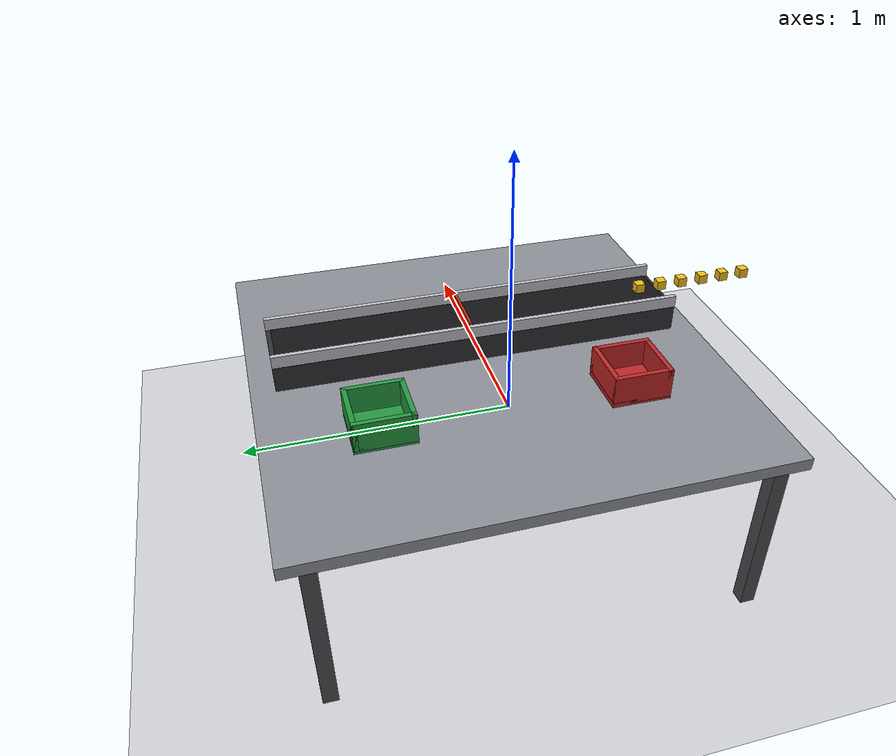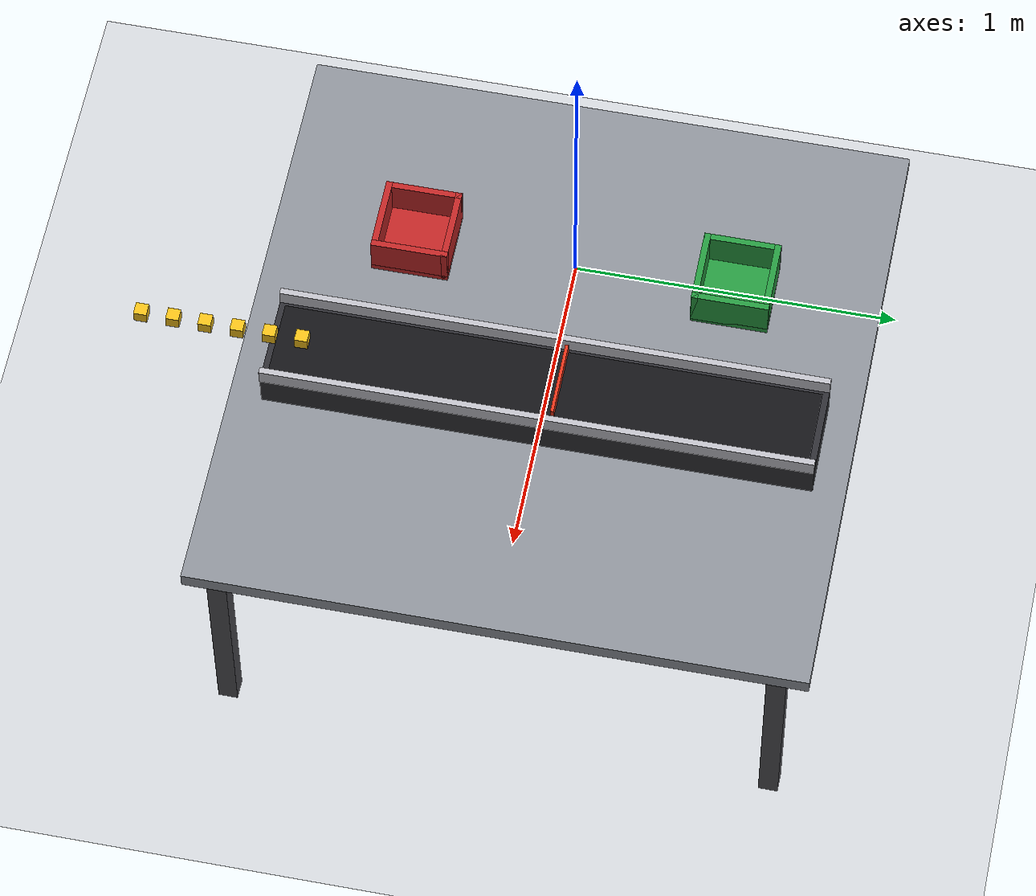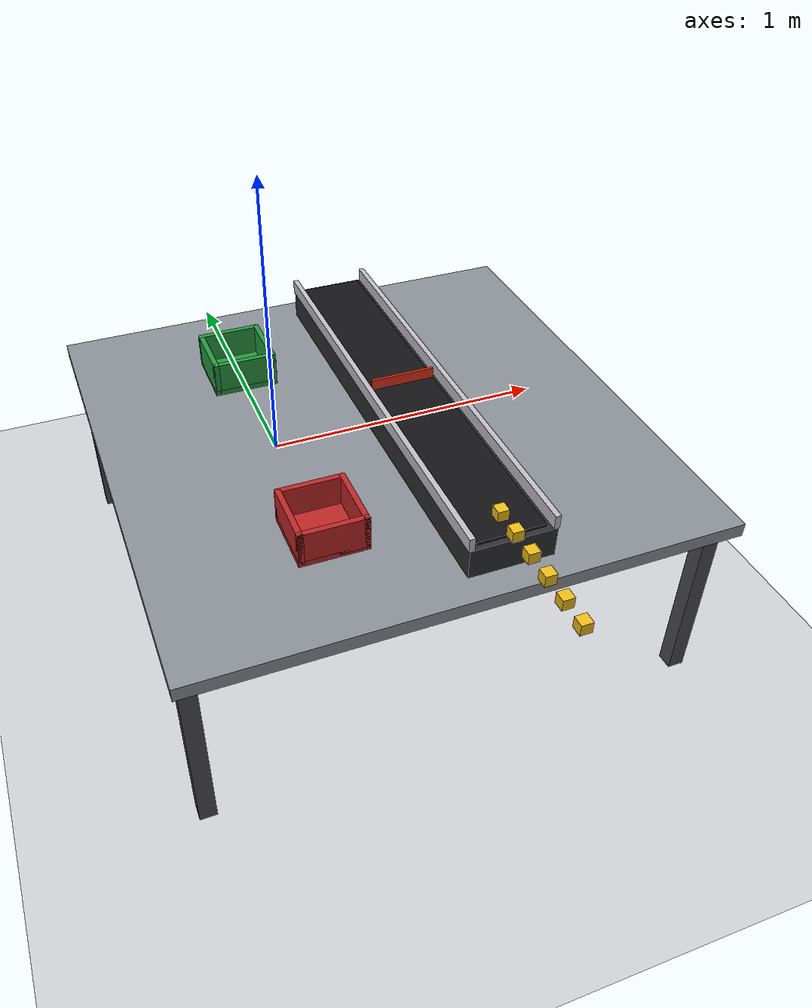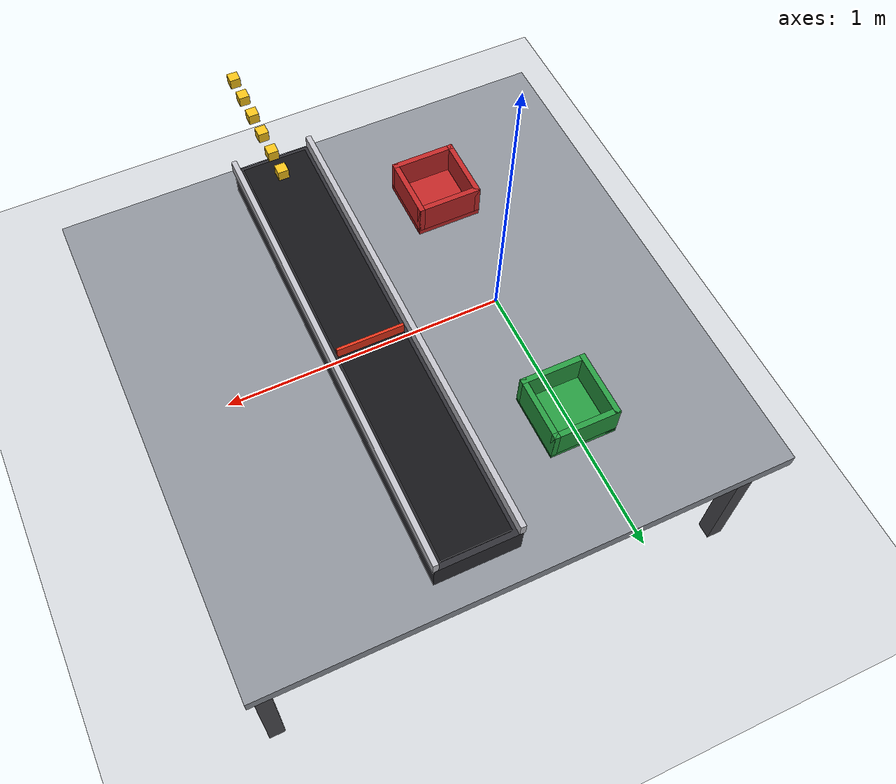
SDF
<?xml version="1.0"?>
<!-- Generated cell layout. Coordinates match asset/fr3_kinematics.py (arm base at the origin). -->
<sdf version="1.6">
  <world name="factory_cell">
    <light name="sun" type="directional">
      <cast_shadows>true</cast_shadows>
      <pose>0 0 10 0 0 0</pose>
      <diffuse>0.9 0.9 0.88 1</diffuse>
      <specular>0.2 0.2 0.2 1</specular>
      <direction>-0.4 0.3 -1.0</direction>
    </light>
    <scene><ambient>0.45 0.45 0.45 1</ambient><shadows>true</shadows></scene>
    <model name="floor"><static>true</static><pose>0 0 -0.75 0 0 0</pose>
      <link name="l"><collision name="c"><geometry><plane><normal>0 0 1</normal><size>20 20</size></plane></geometry></collision>
        <visual name="v"><geometry><plane><normal>0 0 1</normal><size>20 20</size></plane></geometry>
          <material><ambient>0.82 0.83 0.85 1</ambient><diffuse>0.82 0.83 0.85 1</diffuse></material></visual></link></model>
    <physics type="ode">
      <real_time_update_rate>500.0</real_time_update_rate>
      <max_step_size>0.002</max_step_size>
    </physics>
    <plugin name="gazebo_ros_state" filename="libgazebo_ros_state.so">
      <ros><namespace>/gz</namespace></ros>
      <update_rate>10.0</update_rate>
    </plugin>
    <gui>
      <camera name="user_camera"><pose>1.9 -1.5 1.25 0 0.43 2.2</pose></camera>
    </gui>

    <model name='table_top'><static>true</static><pose>0.35 0 -0.025 0 0 0</pose>
      <link name='l'><collision name='c'><geometry><box><size>1.9 1.9 0.05</size></box></geometry></collision>
        <visual name='v'><geometry><box><size>1.9 1.9 0.05</size></box></geometry>
          <material><ambient>0.55 0.57 0.6 1</ambient><diffuse>0.55 0.57 0.6 1</diffuse></material></visual>
      </link></model>
    <model name='table_leg_0'><static>true</static><pose>-0.55 -0.85 -0.4 0 0 0</pose>
      <link name='l'><collision name='c'><geometry><box><size>0.06 0.06 0.75</size></box></geometry></collision>
        <visual name='v'><geometry><box><size>0.06 0.06 0.75</size></box></geometry>
          <material><ambient>0.3 0.3 0.32 1</ambient><diffuse>0.3 0.3 0.32 1</diffuse></material></visual>
      </link></model>
    <model name='table_leg_1'><static>true</static><pose>-0.55 0.85 -0.4 0 0 0</pose>
      <link name='l'><collision name='c'><geometry><box><size>0.06 0.06 0.75</size></box></geometry></collision>
        <visual name='v'><geometry><box><size>0.06 0.06 0.75</size></box></geometry>
          <material><ambient>0.3 0.3 0.32 1</ambient><diffuse>0.3 0.3 0.32 1</diffuse></material></visual>
      </link></model>
    <model name='table_leg_2'><static>true</static><pose>1.25 -0.85 -0.4 0 0 0</pose>
      <link name='l'><collision name='c'><geometry><box><size>0.06 0.06 0.75</size></box></geometry></collision>
        <visual name='v'><geometry><box><size>0.06 0.06 0.75</size></box></geometry>
          <material><ambient>0.3 0.3 0.32 1</ambient><diffuse>0.3 0.3 0.32 1</diffuse></material></visual>
      </link></model>
    <model name='table_leg_3'><static>true</static><pose>1.25 0.85 -0.4 0 0 0</pose>
      <link name='l'><collision name='c'><geometry><box><size>0.06 0.06 0.75</size></box></geometry></collision>
        <visual name='v'><geometry><box><size>0.06 0.06 0.75</size></box></geometry>
          <material><ambient>0.3 0.3 0.32 1</ambient><diffuse>0.3 0.3 0.32 1</diffuse></material></visual>
      </link></model>
    <model name='conveyor_bed'><static>true</static><pose>0.5 0 0.055 0 0 0</pose>
      <link name='l'><collision name='c'><geometry><box><size>0.30 1.7 0.11</size></box></geometry></collision>
        <visual name='v'><geometry><box><size>0.30 1.7 0.11</size></box></geometry>
          <material><ambient>0.18 0.18 0.2 1</ambient><diffuse>0.18 0.18 0.2 1</diffuse></material></visual>
      </link></model>
    <model name='conveyor_belt'><static>true</static><pose>0.5 0 0.115 0 0 0</pose>
      <link name='l'><collision name='c'><geometry><box><size>0.24 1.66 0.01</size></box></geometry></collision>
        <visual name='v'><geometry><box><size>0.24 1.66 0.01</size></box></geometry>
          <material><ambient>0.08 0.08 0.09 1</ambient><diffuse>0.08 0.08 0.09 1</diffuse></material></visual>
      </link></model>
    <model name='rail_left'><static>true</static><pose>0.355 0 0.135 0 0 0</pose>
      <link name='l'><collision name='c'><geometry><box><size>0.02 1.7 0.05</size></box></geometry></collision>
        <visual name='v'><geometry><box><size>0.02 1.7 0.05</size></box></geometry>
          <material><ambient>0.75 0.75 0.78 1</ambient><diffuse>0.75 0.75 0.78 1</diffuse></material></visual>
      </link></model>
    <model name='rail_right'><static>true</static><pose>0.645 0 0.135 0 0 0</pose>
      <link name='l'><collision name='c'><geometry><box><size>0.02 1.7 0.05</size></box></geometry></collision>
        <visual name='v'><geometry><box><size>0.02 1.7 0.05</size></box></geometry>
          <material><ambient>0.75 0.75 0.78 1</ambient><diffuse>0.75 0.75 0.78 1</diffuse></material></visual>
      </link></model>
    <model name='stopper'><static>true</static><pose>0.5 0.045 0.14 0 0 0</pose>
      <link name='l'><collision name='c'><geometry><box><size>0.24 0.01 0.04</size></box></geometry></collision>
        <visual name='v'><geometry><box><size>0.24 0.01 0.04</size></box></geometry>
          <material><ambient>0.9 0.2 0.1 1</ambient><diffuse>0.9 0.2 0.1 1</diffuse></material></visual>
      </link></model>
    <model name='good_bin_floor'><static>true</static><pose>0.0 0.5 0.01 0 0 0</pose>
      <link name='l'><collision name='c'><geometry><box><size>0.24 0.24 0.02</size></box></geometry></collision>
        <visual name='v'><geometry><box><size>0.24 0.24 0.02</size></box></geometry>
          <material><ambient>0.15 0.6 0.25 1</ambient><diffuse>0.15 0.6 0.25 1</diffuse></material></visual>
      </link></model>
    <model name='good_bin_w1'><static>true</static><pose>0.11 0.5 0.07 0 0 0</pose>
      <link name='l'><collision name='c'><geometry><box><size>0.02 0.24 0.12</size></box></geometry></collision>
        <visual name='v'><geometry><box><size>0.02 0.24 0.12</size></box></geometry>
          <material><ambient>0.15 0.6 0.25 1</ambient><diffuse>0.15 0.6 0.25 1</diffuse></material></visual>
      </link></model>
    <model name='good_bin_w2'><static>true</static><pose>-0.11 0.5 0.07 0 0 0</pose>
      <link name='l'><collision name='c'><geometry><box><size>0.02 0.24 0.12</size></box></geometry></collision>
        <visual name='v'><geometry><box><size>0.02 0.24 0.12</size></box></geometry>
          <material><ambient>0.15 0.6 0.25 1</ambient><diffuse>0.15 0.6 0.25 1</diffuse></material></visual>
      </link></model>
    <model name='good_bin_w3'><static>true</static><pose>0.0 0.61 0.07 0 0 0</pose>
      <link name='l'><collision name='c'><geometry><box><size>0.24 0.02 0.12</size></box></geometry></collision>
        <visual name='v'><geometry><box><size>0.24 0.02 0.12</size></box></geometry>
          <material><ambient>0.15 0.6 0.25 1</ambient><diffuse>0.15 0.6 0.25 1</diffuse></material></visual>
      </link></model>
    <model name='good_bin_w4'><static>true</static><pose>0.0 0.39 0.07 0 0 0</pose>
      <link name='l'><collision name='c'><geometry><box><size>0.24 0.02 0.12</size></box></geometry></collision>
        <visual name='v'><geometry><box><size>0.24 0.02 0.12</size></box></geometry>
          <material><ambient>0.15 0.6 0.25 1</ambient><diffuse>0.15 0.6 0.25 1</diffuse></material></visual>
      </link></model>
    <model name='reject_bin_floor'><static>true</static><pose>0.0 -0.5 0.01 0 0 0</pose>
      <link name='l'><collision name='c'><geometry><box><size>0.24 0.24 0.02</size></box></geometry></collision>
        <visual name='v'><geometry><box><size>0.24 0.24 0.02</size></box></geometry>
          <material><ambient>0.75 0.15 0.15 1</ambient><diffuse>0.75 0.15 0.15 1</diffuse></material></visual>
      </link></model>
    <model name='reject_bin_w1'><static>true</static><pose>0.11 -0.5 0.07 0 0 0</pose>
      <link name='l'><collision name='c'><geometry><box><size>0.02 0.24 0.12</size></box></geometry></collision>
        <visual name='v'><geometry><box><size>0.02 0.24 0.12</size></box></geometry>
          <material><ambient>0.75 0.15 0.15 1</ambient><diffuse>0.75 0.15 0.15 1</diffuse></material></visual>
      </link></model>
    <model name='reject_bin_w2'><static>true</static><pose>-0.11 -0.5 0.07 0 0 0</pose>
      <link name='l'><collision name='c'><geometry><box><size>0.02 0.24 0.12</size></box></geometry></collision>
        <visual name='v'><geometry><box><size>0.02 0.24 0.12</size></box></geometry>
          <material><ambient>0.75 0.15 0.15 1</ambient><diffuse>0.75 0.15 0.15 1</diffuse></material></visual>
      </link></model>
    <model name='reject_bin_w3'><static>true</static><pose>0.0 -0.39 0.07 0 0 0</pose>
      <link name='l'><collision name='c'><geometry><box><size>0.24 0.02 0.12</size></box></geometry></collision>
        <visual name='v'><geometry><box><size>0.24 0.02 0.12</size></box></geometry>
          <material><ambient>0.75 0.15 0.15 1</ambient><diffuse>0.75 0.15 0.15 1</diffuse></material></visual>
      </link></model>
    <model name='reject_bin_w4'><static>true</static><pose>0.0 -0.61 0.07 0 0 0</pose>
      <link name='l'><collision name='c'><geometry><box><size>0.24 0.02 0.12</size></box></geometry></collision>
        <visual name='v'><geometry><box><size>0.24 0.02 0.12</size></box></geometry>
          <material><ambient>0.75 0.15 0.15 1</ambient><diffuse>0.75 0.15 0.15 1</diffuse></material></visual>
      </link></model>
    <model name='part_0'><static>false</static><pose>0.5 -0.75 0.14 0 0 0</pose>
      <link name='l'><gravity>false</gravity><kinematic>true</kinematic>
        <visual name='v'><geometry><box><size>0.04 0.04 0.04</size></box></geometry>
          <material><ambient>0.95 0.75 0.1 1</ambient><diffuse>0.95 0.75 0.1 1</diffuse></material></visual>
      </link></model>
    <model name='part_1'><static>false</static><pose>0.5 -0.85 0.14 0 0 0</pose>
      <link name='l'><gravity>false</gravity><kinematic>true</kinematic>
        <visual name='v'><geometry><box><size>0.04 0.04 0.04</size></box></geometry>
          <material><ambient>0.95 0.75 0.1 1</ambient><diffuse>0.95 0.75 0.1 1</diffuse></material></visual>
      </link></model>
    <model name='part_2'><static>false</static><pose>0.5 -0.95 0.14 0 0 0</pose>
      <link name='l'><gravity>false</gravity><kinematic>true</kinematic>
        <visual name='v'><geometry><box><size>0.04 0.04 0.04</size></box></geometry>
          <material><ambient>0.95 0.75 0.1 1</ambient><diffuse>0.95 0.75 0.1 1</diffuse></material></visual>
      </link></model>
    <model name='part_3'><static>false</static><pose>0.5 -1.05 0.14 0 0 0</pose>
      <link name='l'><gravity>false</gravity><kinematic>true</kinematic>
        <visual name='v'><geometry><box><size>0.04 0.04 0.04</size></box></geometry>
          <material><ambient>0.95 0.75 0.1 1</ambient><diffuse>0.95 0.75 0.1 1</diffuse></material></visual>
      </link></model>
    <model name='part_4'><static>false</static><pose>0.5 -1.15 0.14 0 0 0</pose>
      <link name='l'><gravity>false</gravity><kinematic>true</kinematic>
        <visual name='v'><geometry><box><size>0.04 0.04 0.04</size></box></geometry>
          <material><ambient>0.95 0.75 0.1 1</ambient><diffuse>0.95 0.75 0.1 1</diffuse></material></visual>
      </link></model>
    <model name='part_5'><static>false</static><pose>0.5 -1.25 0.14 0 0 0</pose>
      <link name='l'><gravity>false</gravity><kinematic>true</kinematic>
        <visual name='v'><geometry><box><size>0.04 0.04 0.04</size></box></geometry>
          <material><ambient>0.95 0.75 0.1 1</ambient><diffuse>0.95 0.75 0.1 1</diffuse></material></visual>
      </link></model>
  </world>
</sdf>
